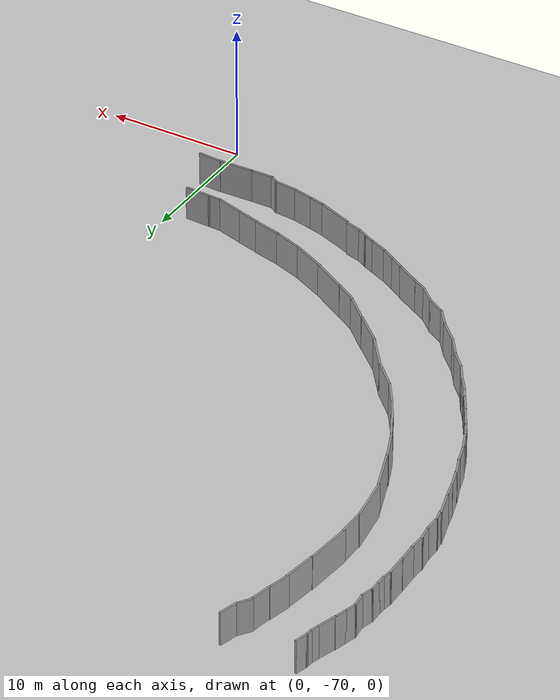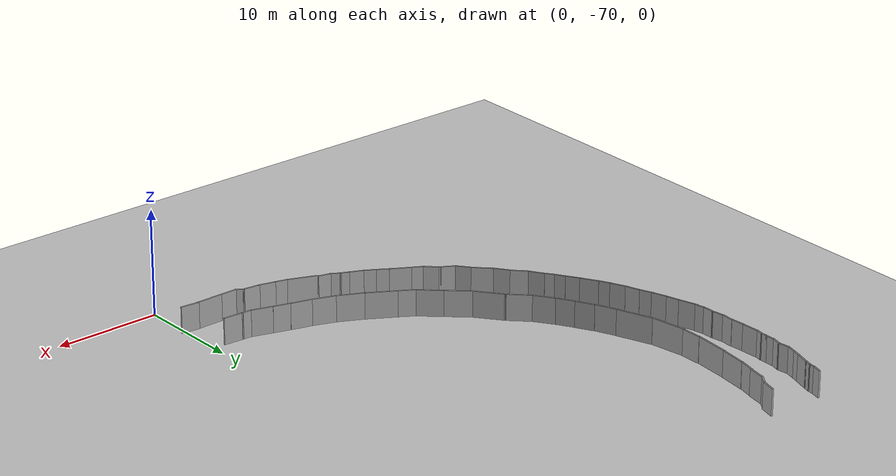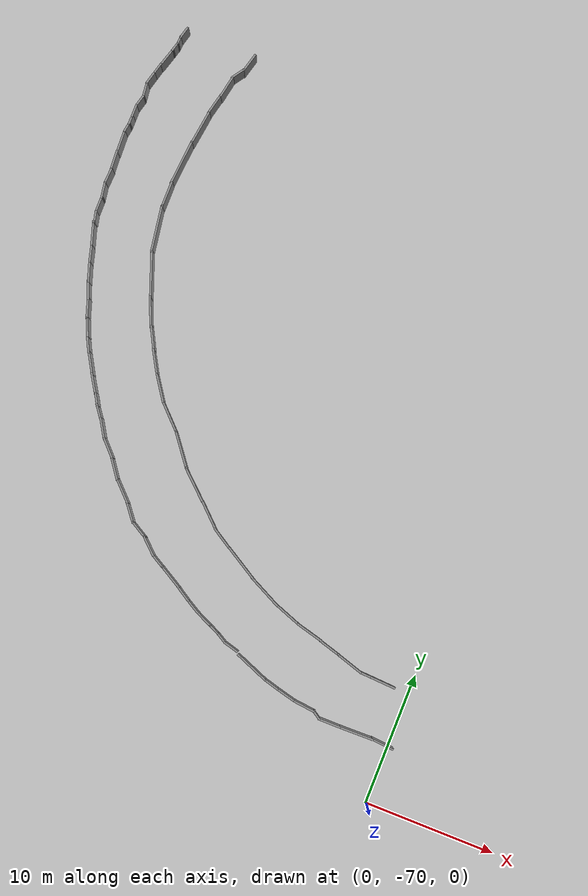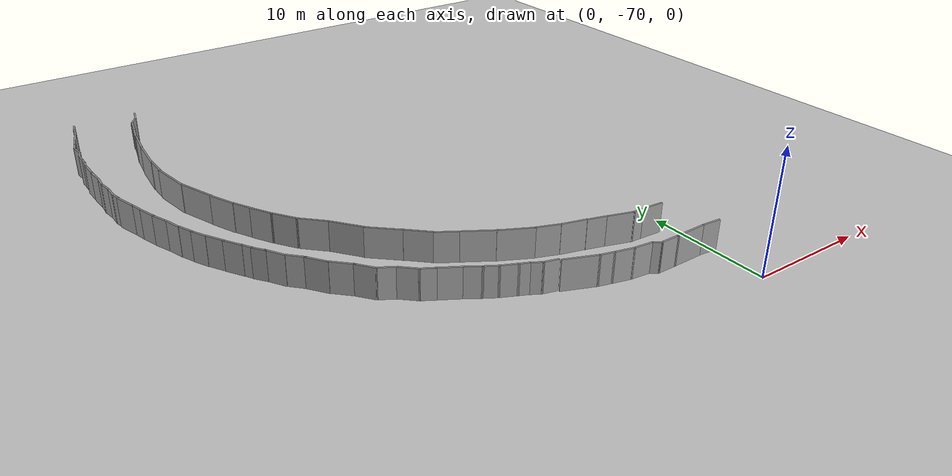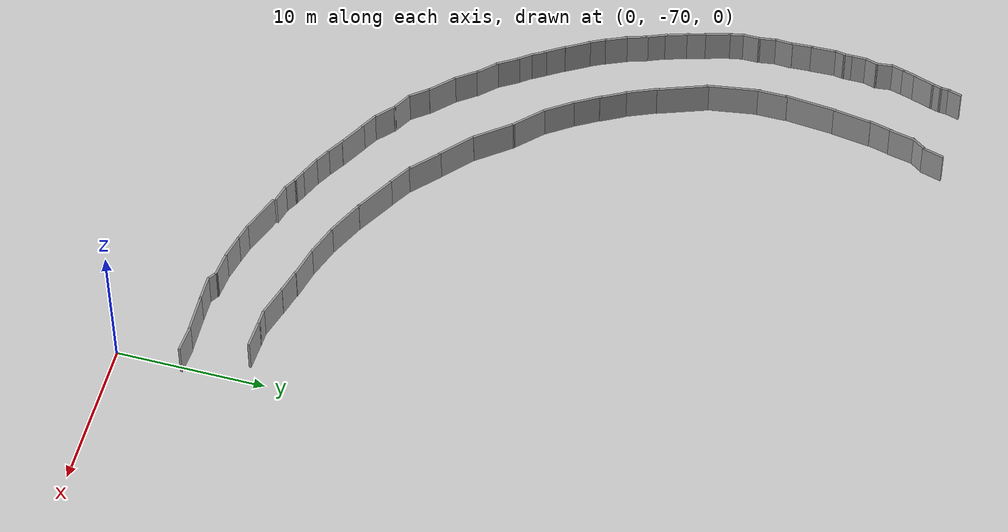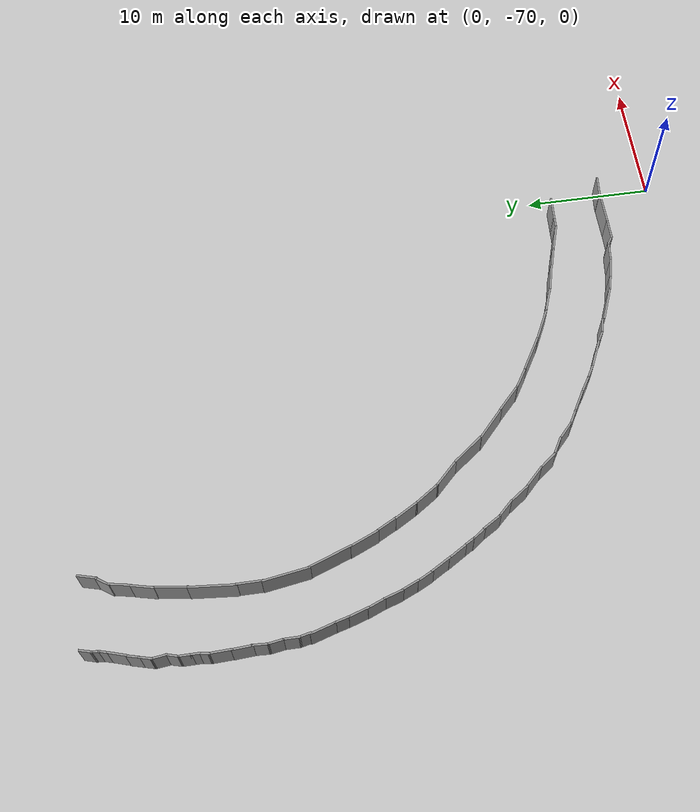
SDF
<sdf version="1.6">
 <world name="default">
  <model name="ground_plane">
   <static>1</static>
   <link name="link">
    <collision name="collision">
     <geometry><plane><normal>0 0 1</normal><size>100 100</size></plane></geometry>
     <surface><friction><ode><mu>100</mu><mu2>50</mu2></ode></friction></surface>
    </collision>
    <visual name="visual">
     <cast_shadows>0</cast_shadows>
     <geometry><plane><normal>0 0 1</normal><size>100 100</size></plane></geometry>
     <material>
      <script><uri>file://media/materials/scripts/gazebo.material</uri><name>Gazebo/Grey</name></script>
     </material>
    </visual>
   </link>
  </model>
  <model name="yuvarlak_sonnn">
   <pose>8.74042 -31.6469 0 0 -0 0</pose>
   <link name="Wall_318">
    <collision name="Wall_318_Collision">
     <geometry><box><size>1.96251 0.15 2.5</size></box></geometry>
     <pose>0 0 1.25 0 -0 0</pose>
    </collision>
    <visual name="Wall_318_Visual">
     <pose>0 0 1.25 0 -0 0</pose>
     <geometry><box><size>1.96251 0.15 2.5</size></box></geometry>
     <material>
      <script><uri>file://media/materials/scripts/gazebo.material</uri><name>Gazebo/Grey</name></script>
      <ambient>1 1 1 1</ambient>
     </material>
    </visual>
    <pose>-10.8735 -29.6626 0 0 -0 3.08581</pose>
   </link>
   <link name="Wall_319">
    <collision name="Wall_319_Collision">
     <geometry><box><size>0.999328 0.15 2.5</size></box></geometry>
     <pose>0 0 1.25 0 -0 0</pose>
    </collision>
    <visual name="Wall_319_Visual">
     <pose>0 0 1.25 0 -0 0</pose>
     <geometry><box><size>0.999328 0.15 2.5</size></box></geometry>
     <material>
      <script><uri>file://media/materials/scripts/gazebo.material</uri><name>Gazebo/Grey</name></script>
      <ambient>1 1 1 1</ambient>
     </material>
    </visual>
    <pose>-12.2026 -29.5921 0 0 -0 3.0945</pose>
   </link>
   <link name="Wall_320">
    <collision name="Wall_320_Collision">
     <geometry><box><size>2.27017 0.15 2.5</size></box></geometry>
     <pose>0 0 1.25 0 -0 0</pose>
    </collision>
    <visual name="Wall_320_Visual">
     <pose>0 0 1.25 0 -0 0</pose>
     <geometry><box><size>2.27017 0.15 2.5</size></box></geometry>
     <material>
      <script><uri>file://media/materials/scripts/gazebo.material</uri><name>Gazebo/Grey</name></script>
      <ambient>1 1 1 1</ambient>
     </material>
    </visual>
    <pose>-13.6704 -29.2599 0 0 -0 2.84265</pose>
   </link>
   <link name="Wall_321">
    <collision name="Wall_321_Collision">
     <geometry><box><size>1.76033 0.15 2.5</size></box></geometry>
     <pose>0 0 1.25 0 -0 0</pose>
    </collision>
    <visual name="Wall_321_Visual">
     <pose>0 0 1.25 0 -0 0</pose>
     <geometry><box><size>1.76033 0.15 2.5</size></box></geometry>
     <material>
      <script><uri>file://media/materials/scripts/gazebo.material</uri><name>Gazebo/Grey</name></script>
      <ambient>1 1 1 1</ambient>
     </material>
    </visual>
    <pose>-15.4273 -28.7271 0 0 -0 2.86408</pose>
   </link>
   <link name="Wall_322">
    <collision name="Wall_322_Collision">
     <geometry><box><size>2.20839 0.15 2.5</size></box></geometry>
     <pose>0 0 1.25 0 -0 0</pose>
    </collision>
    <visual name="Wall_322_Visual">
     <pose>0 0 1.25 0 -0 0</pose>
     <geometry><box><size>2.20839 0.15 2.5</size></box></geometry>
     <material>
      <script><uri>file://media/materials/scripts/gazebo.material</uri><name>Gazebo/Grey</name></script>
      <ambient>1 1 1 1</ambient>
     </material>
    </visual>
    <pose>-17.1985 -28.2201 0 0 -0 2.89043</pose>
   </link>
   <link name="Wall_323">
    <collision name="Wall_323_Collision">
     <geometry><box><size>2.18118 0.15 2.5</size></box></geometry>
     <pose>0 0 1.25 0 -0 0</pose>
    </collision>
    <visual name="Wall_323_Visual">
     <pose>0 0 1.25 0 -0 0</pose>
     <geometry><box><size>2.18118 0.15 2.5</size></box></geometry>
     <material>
      <script><uri>file://media/materials/scripts/gazebo.material</uri><name>Gazebo/Grey</name></script>
      <ambient>1 1 1 1</ambient>
     </material>
    </visual>
    <pose>-19.1195 -27.6179 0 0 -0 2.79345</pose>
   </link>
   <link name="Wall_324">
    <collision name="Wall_324_Collision">
     <geometry><box><size>2.83524 0.15 2.5</size></box></geometry>
     <pose>0 0 1.25 0 -0 0</pose>
    </collision>
    <visual name="Wall_324_Visual">
     <pose>0 0 1.25 0 -0 0</pose>
     <geometry><box><size>2.83524 0.15 2.5</size></box></geometry>
     <material>
      <script><uri>file://media/materials/scripts/gazebo.material</uri><name>Gazebo/Grey</name></script>
      <ambient>1 1 1 1</ambient>
     </material>
    </visual>
    <pose>-21.3083 -26.6763 0 0 -0 2.6824</pose>
   </link>
   <link name="Wall_328">
    <collision name="Wall_328_Collision">
     <geometry><box><size>2.43569 0.15 2.5</size></box></geometry>
     <pose>0 0 1.25 0 -0 0</pose>
    </collision>
    <visual name="Wall_328_Visual">
     <pose>0 0 1.25 0 -0 0</pose>
     <geometry><box><size>2.43569 0.15 2.5</size></box></geometry>
     <material>
      <script><uri>file://media/materials/scripts/gazebo.material</uri><name>Gazebo/Grey</name></script>
      <ambient>1 1 1 1</ambient>
     </material>
    </visual>
    <pose>-27.1558 -22.9643 0 0 -0 2.38362</pose>
   </link>
   <link name="Wall_329">
    <collision name="Wall_329_Collision">
     <geometry><box><size>2.84211 0.15 2.5</size></box></geometry>
     <pose>0 0 1.25 0 -0 0</pose>
    </collision>
    <visual name="Wall_329_Visual">
     <pose>0 0 1.25 0 -0 0</pose>
     <geometry><box><size>2.84211 0.15 2.5</size></box></geometry>
     <material>
      <script><uri>file://media/materials/scripts/gazebo.material</uri><name>Gazebo/Grey</name></script>
      <ambient>1 1 1 1</ambient>
     </material>
    </visual>
    <pose>-29.0097 -21.2702 0 0 -0 2.40083</pose>
   </link>
   <link name="Wall_330">
    <collision name="Wall_330_Collision">
     <geometry><box><size>2.95314 0.15 2.5</size></box></geometry>
     <pose>0 0 1.25 0 -0 0</pose>
    </collision>
    <visual name="Wall_330_Visual">
     <pose>0 0 1.25 0 -0 0</pose>
     <geometry><box><size>2.95314 0.15 2.5</size></box></geometry>
     <material>
      <script><uri>file://media/materials/scripts/gazebo.material</uri><name>Gazebo/Grey</name></script>
      <ambient>1 1 1 1</ambient>
     </material>
    </visual>
    <pose>-30.8257 -19.2499 0 0 -0 2.22533</pose>
   </link>
   <link name="Wall_331">
    <collision name="Wall_331_Collision">
     <geometry><box><size>2.5 0.15 2.5</size></box></geometry>
     <pose>0 0 1.25 0 -0 0</pose>
    </collision>
    <visual name="Wall_331_Visual">
     <pose>0 0 1.25 0 -0 0</pose>
     <geometry><box><size>2.5 0.15 2.5</size></box></geometry>
     <material>
      <script><uri>file://media/materials/scripts/gazebo.material</uri><name>Gazebo/Grey</name></script>
      <ambient>1 1 1 1</ambient>
     </material>
    </visual>
    <pose>-32.5098 -17.3072 0 0 -0 2.35619</pose>
   </link>
   <link name="Wall_342">
    <collision name="Wall_342_Collision">
     <geometry><box><size>2 0.15 2.5</size></box></geometry>
     <pose>0 0 1.25 0 -0 0</pose>
    </collision>
    <visual name="Wall_342_Visual">
     <pose>0 0 1.25 0 -0 0</pose>
     <geometry><box><size>2 0.15 2.5</size></box></geometry>
     <material>
      <script><uri>file://media/materials/scripts/gazebo.material</uri><name>Gazebo/Grey</name></script>
      <ambient>1 1 1 1</ambient>
     </material>
    </visual>
    <pose>-34.9766 -13.9479 0 0 -0 2.0944</pose>
   </link>
   <link name="Wall_343">
    <collision name="Wall_343_Collision">
     <geometry><box><size>1.83031 0.15 2.5</size></box></geometry>
     <pose>0 0 1.25 0 -0 0</pose>
    </collision>
    <visual name="Wall_343_Visual">
     <pose>0 0 1.25 0 -0 0</pose>
     <geometry><box><size>1.83031 0.15 2.5</size></box></geometry>
     <material>
      <script><uri>file://media/materials/scripts/gazebo.material</uri><name>Gazebo/Grey</name></script>
      <ambient>1 1 1 1</ambient>
     </material>
    </visual>
    <pose>-35.8007 -12.4039 0 0 -0 2.05646</pose>
   </link>
   <link name="Wall_344">
    <collision name="Wall_344_Collision">
     <geometry><box><size>2.35974 0.15 2.5</size></box></geometry>
     <pose>0 0 1.25 0 -0 0</pose>
    </collision>
    <visual name="Wall_344_Visual">
     <pose>0 0 1.25 0 -0 0</pose>
     <geometry><box><size>2.35974 0.15 2.5</size></box></geometry>
     <material>
      <script><uri>file://media/materials/scripts/gazebo.material</uri><name>Gazebo/Grey</name></script>
      <ambient>1 1 1 1</ambient>
     </material>
    </visual>
    <pose>-36.6567 -10.6445 0 0 -0 1.97372</pose>
   </link>
   <link name="Wall_345">
    <collision name="Wall_345_Collision">
     <geometry><box><size>3.47447 0.15 2.5</size></box></geometry>
     <pose>0 0 1.25 0 -0 0</pose>
    </collision>
    <visual name="Wall_345_Visual">
     <pose>0 0 1.25 0 -0 0</pose>
     <geometry><box><size>3.47447 0.15 2.5</size></box></geometry>
     <material>
      <script><uri>file://media/materials/scripts/gazebo.material</uri><name>Gazebo/Grey</name></script>
      <ambient>1 1 1 1</ambient>
     </material>
    </visual>
    <pose>-37.6289 -8.06645 0 0 -0 1.92052</pose>
   </link>
   <link name="Wall_346">
    <collision name="Wall_346_Collision">
     <geometry><box><size>3.59993 0.15 2.5</size></box></geometry>
     <pose>0 0 1.25 0 -0 0</pose>
    </collision>
    <visual name="Wall_346_Visual">
     <pose>0 0 1.25 0 -0 0</pose>
     <geometry><box><size>3.59993 0.15 2.5</size></box></geometry>
     <material>
      <script><uri>file://media/materials/scripts/gazebo.material</uri><name>Gazebo/Grey</name></script>
      <ambient>1 1 1 1</ambient>
     </material>
    </visual>
    <pose>-38.4907 -4.79984 0 0 -0 1.72313</pose>
   </link>
   <link name="Wall_347">
    <collision name="Wall_347_Collision">
     <geometry><box><size>2 0.15 2.5</size></box></geometry>
     <pose>0 0 1.25 0 -0 0</pose>
    </collision>
    <visual name="Wall_347_Visual">
     <pose>0 0 1.25 0 -0 0</pose>
     <geometry><box><size>2 0.15 2.5</size></box></geometry>
     <material>
      <script><uri>file://media/materials/scripts/gazebo.material</uri><name>Gazebo/Grey</name></script>
      <ambient>1 1 1 1</ambient>
     </material>
    </visual>
    <pose>-38.7219 -2.16985 0 0 -0 1.5708</pose>
   </link>
   <link name="Wall_348">
    <collision name="Wall_348_Collision">
     <geometry><box><size>3.54552 0.15 2.5</size></box></geometry>
     <pose>0 0 1.25 0 -0 0</pose>
    </collision>
    <visual name="Wall_348_Visual">
     <pose>0 0 1.25 0 -0 0</pose>
     <geometry><box><size>3.54552 0.15 2.5</size></box></geometry>
     <material>
      <script><uri>file://media/materials/scripts/gazebo.material</uri><name>Gazebo/Grey</name></script>
      <ambient>1 1 1 1</ambient>
     </material>
    </visual>
    <pose>-38.6044 0.446442 0 0 -0 1.48347</pose>
   </link>
   <link name="Wall_349">
    <collision name="Wall_349_Collision">
     <geometry><box><size>2.61247 0.15 2.5</size></box></geometry>
     <pose>0 0 1.25 0 -0 0</pose>
    </collision>
    <visual name="Wall_349_Visual">
     <pose>0 0 1.25 0 -0 0</pose>
     <geometry><box><size>2.61247 0.15 2.5</size></box></geometry>
     <material>
      <script><uri>file://media/materials/scripts/gazebo.material</uri><name>Gazebo/Grey</name></script>
      <ambient>1 1 1 1</ambient>
     </material>
    </visual>
    <pose>-38.2575 3.35742 0 0 -0 1.43372</pose>
   </link>
   <link name="Wall_350">
    <collision name="Wall_350_Collision">
     <geometry><box><size>1.70824 0.15 2.5</size></box></geometry>
     <pose>0 0 1.25 0 -0 0</pose>
    </collision>
    <visual name="Wall_350_Visual">
     <pose>0 0 1.25 0 -0 0</pose>
     <geometry><box><size>1.70824 0.15 2.5</size></box></geometry>
     <material>
      <script><uri>file://media/materials/scripts/gazebo.material</uri><name>Gazebo/Grey</name></script>
      <ambient>1 1 1 1</ambient>
     </material>
    </visual>
    <pose>-37.9399 5.33515 0 0 -0 1.33767</pose>
   </link>
   <link name="Wall_364">
    <collision name="Wall_364_Collision">
     <geometry><box><size>1.5 0.15 2.5</size></box></geometry>
     <pose>0 0 1.25 0 -0 0</pose>
    </collision>
    <visual name="Wall_364_Visual">
     <pose>0 0 1.25 0 -0 0</pose>
     <geometry><box><size>1.5 0.15 2.5</size></box></geometry>
     <material>
      <script><uri>file://media/materials/scripts/gazebo.material</uri><name>Gazebo/Grey</name></script>
      <ambient>1 1 1 1</ambient>
     </material>
    </visual>
    <pose>-36.6661 9.17265 0 0 0 -1.8326</pose>
   </link>
   <link name="Wall_365">
    <collision name="Wall_365_Collision">
     <geometry><box><size>1.18407 0.15 2.5</size></box></geometry>
     <pose>0 0 1.25 0 -0 0</pose>
    </collision>
    <visual name="Wall_365_Visual">
     <pose>0 0 1.25 0 -0 0</pose>
     <geometry><box><size>1.18407 0.15 2.5</size></box></geometry>
     <material>
      <script><uri>file://media/materials/scripts/gazebo.material</uri><name>Gazebo/Grey</name></script>
      <ambient>1 1 1 1</ambient>
     </material>
    </visual>
    <pose>-37.162 8.09301 0 0 0 -2.16767</pose>
   </link>
   <link name="Wall_366">
    <collision name="Wall_366_Collision">
     <geometry><box><size>1.75193 0.15 2.5</size></box></geometry>
     <pose>0 0 1.25 0 -0 0</pose>
    </collision>
    <visual name="Wall_366_Visual">
     <pose>0 0 1.25 0 -0 0</pose>
     <geometry><box><size>1.75193 0.15 2.5</size></box></geometry>
     <material>
      <script><uri>file://media/materials/scripts/gazebo.material</uri><name>Gazebo/Grey</name></script>
      <ambient>1 1 1 1</ambient>
     </material>
    </visual>
    <pose>-37.5756 6.87928 0 0 0 -1.76381</pose>
   </link>
   <link name="Wall_368">
    <collision name="Wall_368_Collision">
     <geometry><box><size>1.87517 0.15 2.5</size></box></geometry>
     <pose>0 0 1.25 0 -0 0</pose>
    </collision>
    <visual name="Wall_368_Visual">
     <pose>0 0 1.25 0 -0 0</pose>
     <geometry><box><size>1.87517 0.15 2.5</size></box></geometry>
     <material>
      <script><uri>file://media/materials/scripts/gazebo.material</uri><name>Gazebo/Grey</name></script>
      <ambient>1 1 1 1</ambient>
     </material>
    </visual>
    <pose>-25.6241 -24.2058 0 0 0 -0.556826</pose>
   </link>
   <link name="Wall_369">
    <collision name="Wall_369_Collision">
     <geometry><box><size>2.92122 0.15 2.5</size></box></geometry>
     <pose>0 0 1.25 0 -0 0</pose>
    </collision>
    <visual name="Wall_369_Visual">
     <pose>0 0 1.25 0 -0 0</pose>
     <geometry><box><size>2.92122 0.15 2.5</size></box></geometry>
     <material>
      <script><uri>file://media/materials/scripts/gazebo.material</uri><name>Gazebo/Grey</name></script>
      <ambient>1 1 1 1</ambient>
     </material>
    </visual>
    <pose>-23.6712 -25.3714 0 0 0 -0.537813</pose>
   </link>
   <link name="Wall_379">
    <collision name="Wall_379_Collision">
     <geometry><box><size>2.23821 0.15 2.5</size></box></geometry>
     <pose>0 0 1.25 0 -0 0</pose>
    </collision>
    <visual name="Wall_379_Visual">
     <pose>0 0 1.25 0 -0 0</pose>
     <geometry><box><size>2.23821 0.15 2.5</size></box></geometry>
     <material>
      <script><uri>file://media/materials/scripts/gazebo.material</uri><name>Gazebo/Grey</name></script>
      <ambient>1 1 1 1</ambient>
     </material>
    </visual>
    <pose>-33.9274 -15.6127 0 0 0 -0.974051</pose>
   </link>
   <link name="Wall_39">
    <collision name="Wall_39_Collision">
     <geometry><box><size>1 0.15 2.5</size></box></geometry>
     <pose>0 0 1.25 0 -0 0</pose>
    </collision>
    <visual name="Wall_39_Visual">
     <pose>0 0 1.25 0 -0 0</pose>
     <geometry><box><size>1 0.15 2.5</size></box></geometry>
     <material>
      <script><uri>file://media/materials/scripts/gazebo.material</uri><name>Gazebo/Grey</name></script>
      <ambient>1 1 1 1</ambient>
     </material>
    </visual>
    <pose>-41.9886 9.47233 0 0 0 -1.8326</pose>
   </link>
   <link name="Wall_40">
    <collision name="Wall_40_Collision">
     <geometry><box><size>0.686699 0.15 2.5</size></box></geometry>
     <pose>0 0 1.25 0 -0 0</pose>
    </collision>
    <visual name="Wall_40_Visual">
     <pose>0 0 1.25 0 -0 0</pose>
     <geometry><box><size>0.686699 0.15 2.5</size></box></geometry>
     <material>
      <script><uri>file://media/materials/scripts/gazebo.material</uri><name>Gazebo/Grey</name></script>
      <ambient>1 1 1 1</ambient>
     </material>
    </visual>
    <pose>-42.12 8.81444 0 0 0 -1.65071</pose>
   </link>
   <link name="Wall_41">
    <collision name="Wall_41_Collision">
     <geometry><box><size>0.75 0.15 2.5</size></box></geometry>
     <pose>0 0 1.25 0 -0 0</pose>
    </collision>
    <visual name="Wall_41_Visual">
     <pose>0 0 1.25 0 -0 0</pose>
     <geometry><box><size>0.75 0.15 2.5</size></box></geometry>
     <material>
      <script><uri>file://media/materials/scripts/gazebo.material</uri><name>Gazebo/Grey</name></script>
      <ambient>1 1 1 1</ambient>
     </material>
    </visual>
    <pose>-42.2191 8.25717 0 0 0 -1.8326</pose>
   </link>
   <link name="Wall_42">
    <collision name="Wall_42_Collision">
     <geometry><box><size>1.51857 0.15 2.5</size></box></geometry>
     <pose>0 0 1.25 0 -0 0</pose>
    </collision>
    <visual name="Wall_42_Visual">
     <pose>0 0 1.25 0 -0 0</pose>
     <geometry><box><size>1.51857 0.15 2.5</size></box></geometry>
     <material>
      <script><uri>file://media/materials/scripts/gazebo.material</uri><name>Gazebo/Grey</name></script>
      <ambient>1 1 1 1</ambient>
     </material>
    </visual>
    <pose>-42.4975 7.31322 0 0 0 -1.86856</pose>
   </link>
   <link name="Wall_43">
    <collision name="Wall_43_Collision">
     <geometry><box><size>1 0.15 2.5</size></box></geometry>
     <pose>0 0 1.25 0 -0 0</pose>
    </collision>
    <visual name="Wall_43_Visual">
     <pose>0 0 1.25 0 -0 0</pose>
     <geometry><box><size>1 0.15 2.5</size></box></geometry>
     <material>
      <script><uri>file://media/materials/scripts/gazebo.material</uri><name>Gazebo/Grey</name></script>
      <ambient>1 1 1 1</ambient>
     </material>
    </visual>
    <pose>-42.8284 6.24853 0 0 0 -1.8326</pose>
   </link>
   <link name="Wall_44">
    <collision name="Wall_44_Collision">
     <geometry><box><size>1 0.15 2.5</size></box></geometry>
     <pose>0 0 1.25 0 -0 0</pose>
    </collision>
    <visual name="Wall_44_Visual">
     <pose>0 0 1.25 0 -0 0</pose>
     <geometry><box><size>1 0.15 2.5</size></box></geometry>
     <material>
      <script><uri>file://media/materials/scripts/gazebo.material</uri><name>Gazebo/Grey</name></script>
      <ambient>1 1 1 1</ambient>
     </material>
    </visual>
    <pose>-43.0484 5.42749 0 0 0 -1.8326</pose>
   </link>
   <link name="Wall_45">
    <collision name="Wall_45_Collision">
     <geometry><box><size>1.20408 0.15 2.5</size></box></geometry>
     <pose>0 0 1.25 0 -0 0</pose>
    </collision>
    <visual name="Wall_45_Visual">
     <pose>0 0 1.25 0 -0 0</pose>
     <geometry><box><size>1.20408 0.15 2.5</size></box></geometry>
     <material>
      <script><uri>file://media/materials/scripts/gazebo.material</uri><name>Gazebo/Grey</name></script>
      <ambient>1 1 1 1</ambient>
     </material>
    </visual>
    <pose>-43.099 4.49329 0 0 0 -1.45796</pose>
   </link>
   <link name="Wall_46">
    <collision name="Wall_46_Collision">
     <geometry><box><size>1 0.15 2.5</size></box></geometry>
     <pose>0 0 1.25 0 -0 0</pose>
    </collision>
    <visual name="Wall_46_Visual">
     <pose>0 0 1.25 0 -0 0</pose>
     <geometry><box><size>1 0.15 2.5</size></box></geometry>
     <material>
      <script><uri>file://media/materials/scripts/gazebo.material</uri><name>Gazebo/Grey</name></script>
      <ambient>1 1 1 1</ambient>
     </material>
    </visual>
    <pose>-43.1497 3.55908 0 0 0 -1.8326</pose>
   </link>
   <link name="Wall_47">
    <collision name="Wall_47_Collision">
     <geometry><box><size>1 0.15 2.5</size></box></geometry>
     <pose>0 0 1.25 0 -0 0</pose>
    </collision>
    <visual name="Wall_47_Visual">
     <pose>0 0 1.25 0 -0 0</pose>
     <geometry><box><size>1 0.15 2.5</size></box></geometry>
     <material>
      <script><uri>file://media/materials/scripts/gazebo.material</uri><name>Gazebo/Grey</name></script>
      <ambient>1 1 1 1</ambient>
     </material>
    </visual>
    <pose>-43.2597 2.72356 0 0 0 -1.5708</pose>
   </link>
   <link name="Wall_48">
    <collision name="Wall_48_Collision">
     <geometry><box><size>0.75 0.15 2.5</size></box></geometry>
     <pose>0 0 1.25 0 -0 0</pose>
    </collision>
    <visual name="Wall_48_Visual">
     <pose>0 0 1.25 0 -0 0</pose>
     <geometry><box><size>0.75 0.15 2.5</size></box></geometry>
     <material>
      <script><uri>file://media/materials/scripts/gazebo.material</uri><name>Gazebo/Grey</name></script>
      <ambient>1 1 1 1</ambient>
     </material>
    </visual>
    <pose>-43.2597 1.99856 0 0 0 -1.5708</pose>
   </link>
   <link name="Wall_49">
    <collision name="Wall_49_Collision">
     <geometry><box><size>0.784371 0.15 2.5</size></box></geometry>
     <pose>0 0 1.25 0 -0 0</pose>
    </collision>
    <visual name="Wall_49_Visual">
     <pose>0 0 1.25 0 -0 0</pose>
     <geometry><box><size>0.784371 0.15 2.5</size></box></geometry>
     <material>
      <script><uri>file://media/materials/scripts/gazebo.material</uri><name>Gazebo/Grey</name></script>
      <ambient>1 1 1 1</ambient>
     </material>
    </visual>
    <pose>-43.3124 1.38579 0 0 0 -1.73779</pose>
   </link>
   <link name="Wall_50">
    <collision name="Wall_50_Collision">
     <geometry><box><size>1.75114 0.15 2.5</size></box></geometry>
     <pose>0 0 1.25 0 -0 0</pose>
    </collision>
    <visual name="Wall_50_Visual">
     <pose>0 0 1.25 0 -0 0</pose>
     <geometry><box><size>1.75114 0.15 2.5</size></box></geometry>
     <material>
      <script><uri>file://media/materials/scripts/gazebo.material</uri><name>Gazebo/Grey</name></script>
      <ambient>1 1 1 1</ambient>
     </material>
    </visual>
    <pose>-43.3349 0.273016 0 0 0 -1.5331</pose>
   </link>
   <link name="Wall_51">
    <collision name="Wall_51_Collision">
     <geometry><box><size>1.56299 0.15 2.5</size></box></geometry>
     <pose>0 0 1.25 0 -0 0</pose>
    </collision>
    <visual name="Wall_51_Visual">
     <pose>0 0 1.25 0 -0 0</pose>
     <geometry><box><size>1.56299 0.15 2.5</size></box></geometry>
     <material>
      <script><uri>file://media/materials/scripts/gazebo.material</uri><name>Gazebo/Grey</name></script>
      <ambient>1 1 1 1</ambient>
     </material>
    </visual>
    <pose>-43.2834 -1.23226 0 0 0 -1.5121</pose>
   </link>
   <link name="Wall_52">
    <collision name="Wall_52_Collision">
     <geometry><box><size>1.25165 0.15 2.5</size></box></geometry>
     <pose>0 0 1.25 0 -0 0</pose>
    </collision>
    <visual name="Wall_52_Visual">
     <pose>0 0 1.25 0 -0 0</pose>
     <geometry><box><size>1.25165 0.15 2.5</size></box></geometry>
     <material>
      <script><uri>file://media/materials/scripts/gazebo.material</uri><name>Gazebo/Grey</name></script>
      <ambient>1 1 1 1</ambient>
     </material>
    </visual>
    <pose>-43.2521 -2.48754 0 0 0 -1.6256</pose>
   </link>
   <link name="Wall_53">
    <collision name="Wall_53_Collision">
     <geometry><box><size>1.25439 0.15 2.5</size></box></geometry>
     <pose>0 0 1.25 0 -0 0</pose>
    </collision>
    <visual name="Wall_53_Visual">
     <pose>0 0 1.25 0 -0 0</pose>
     <geometry><box><size>1.25439 0.15 2.5</size></box></geometry>
     <material>
      <script><uri>file://media/materials/scripts/gazebo.material</uri><name>Gazebo/Grey</name></script>
      <ambient>1 1 1 1</ambient>
     </material>
    </visual>
    <pose>-43.1976 -3.58321 0 0 0 -1.41689</pose>
   </link>
   <link name="Wall_54">
    <collision name="Wall_54_Collision">
     <geometry><box><size>1.25 0.15 2.5</size></box></geometry>
     <pose>0 0 1.25 0 -0 0</pose>
    </collision>
    <visual name="Wall_54_Visual">
     <pose>0 0 1.25 0 -0 0</pose>
     <geometry><box><size>1.25 0.15 2.5</size></box></geometry>
     <material>
      <script><uri>file://media/materials/scripts/gazebo.material</uri><name>Gazebo/Grey</name></script>
      <ambient>1 1 1 1</ambient>
     </material>
    </visual>
    <pose>-43.1129 -4.67888 0 0 0 -1.5708</pose>
   </link>
   <link name="Wall_55">
    <collision name="Wall_55_Collision">
     <geometry><box><size>0.967463 0.15 2.5</size></box></geometry>
     <pose>0 0 1.25 0 -0 0</pose>
    </collision>
    <visual name="Wall_55_Visual">
     <pose>0 0 1.25 0 -0 0</pose>
     <geometry><box><size>0.967463 0.15 2.5</size></box></geometry>
     <material>
      <script><uri>file://media/materials/scripts/gazebo.material</uri><name>Gazebo/Grey</name></script>
      <ambient>1 1 1 1</ambient>
     </material>
    </visual>
    <pose>-43.0235 -5.6277 0 0 0 -1.35018</pose>
   </link>
   <link name="Wall_56">
    <collision name="Wall_56_Collision">
     <geometry><box><size>1.99476 0.15 2.5</size></box></geometry>
     <pose>0 0 1.25 0 -0 0</pose>
    </collision>
    <visual name="Wall_56_Visual">
     <pose>0 0 1.25 0 -0 0</pose>
     <geometry><box><size>1.99476 0.15 2.5</size></box></geometry>
     <material>
      <script><uri>file://media/materials/scripts/gazebo.material</uri><name>Gazebo/Grey</name></script>
      <ambient>1 1 1 1</ambient>
     </material>
    </visual>
    <pose>-42.7278 -6.90918 0 0 0 -1.27624</pose>
   </link>
   <link name="Wall_57">
    <collision name="Wall_57_Collision">
     <geometry><box><size>1.25 0.15 2.5</size></box></geometry>
     <pose>0 0 1.25 0 -0 0</pose>
    </collision>
    <visual name="Wall_57_Visual">
     <pose>0 0 1.25 0 -0 0</pose>
     <geometry><box><size>1.25 0.15 2.5</size></box></geometry>
     <material>
      <script><uri>file://media/materials/scripts/gazebo.material</uri><name>Gazebo/Grey</name></script>
      <ambient>1 1 1 1</ambient>
     </material>
    </visual>
    <pose>-42.3177 -8.30298 0 0 0 -1.309</pose>
   </link>
   <link name="Wall_58">
    <collision name="Wall_58_Collision">
     <geometry><box><size>1.60574 0.15 2.5</size></box></geometry>
     <pose>0 0 1.25 0 -0 0</pose>
    </collision>
    <visual name="Wall_58_Visual">
     <pose>0 0 1.25 0 -0 0</pose>
     <geometry><box><size>1.60574 0.15 2.5</size></box></geometry>
     <material>
      <script><uri>file://media/materials/scripts/gazebo.material</uri><name>Gazebo/Grey</name></script>
      <ambient>1 1 1 1</ambient>
     </material>
    </visual>
    <pose>-41.9503 -9.54658 0 0 0 -1.25655</pose>
   </link>
   <link name="Wall_59">
    <collision name="Wall_59_Collision">
     <geometry><box><size>1.475 0.15 2.5</size></box></geometry>
     <pose>0 0 1.25 0 -0 0</pose>
    </collision>
    <visual name="Wall_59_Visual">
     <pose>0 0 1.25 0 -0 0</pose>
     <geometry><box><size>1.475 0.15 2.5</size></box></geometry>
     <material>
      <script><uri>file://media/materials/scripts/gazebo.material</uri><name>Gazebo/Grey</name></script>
      <ambient>1 1 1 1</ambient>
     </material>
    </visual>
    <pose>-41.4985 -10.8535 0 0 0 -1.18876</pose>
   </link>
   <link name="Wall_60">
    <collision name="Wall_60_Collision">
     <geometry><box><size>1.55985 0.15 2.5</size></box></geometry>
     <pose>0 0 1.25 0 -0 0</pose>
    </collision>
    <visual name="Wall_60_Visual">
     <pose>0 0 1.25 0 -0 0</pose>
     <geometry><box><size>1.55985 0.15 2.5</size></box></geometry>
     <material>
      <script><uri>file://media/materials/scripts/gazebo.material</uri><name>Gazebo/Grey</name></script>
      <ambient>1 1 1 1</ambient>
     </material>
    </visual>
    <pose>-41.0387 -12.1202 0 0 0 -1.26421</pose>
   </link>
   <link name="Wall_61">
    <collision name="Wall_61_Collision">
     <geometry><box><size>1.48357 0.15 2.5</size></box></geometry>
     <pose>0 0 1.25 0 -0 0</pose>
    </collision>
    <visual name="Wall_61_Visual">
     <pose>0 0 1.25 0 -0 0</pose>
     <geometry><box><size>1.48357 0.15 2.5</size></box></geometry>
     <material>
      <script><uri>file://media/materials/scripts/gazebo.material</uri><name>Gazebo/Grey</name></script>
      <ambient>1 1 1 1</ambient>
     </material>
    </visual>
    <pose>-40.5406 -13.404 0 0 0 -1.16173</pose>
   </link>
   <link name="Wall_62">
    <collision name="Wall_62_Collision">
     <geometry><box><size>1.34466 0.15 2.5</size></box></geometry>
     <pose>0 0 1.25 0 -0 0</pose>
    </collision>
    <visual name="Wall_62_Visual">
     <pose>0 0 1.25 0 -0 0</pose>
     <geometry><box><size>1.34466 0.15 2.5</size></box></geometry>
     <material>
      <script><uri>file://media/materials/scripts/gazebo.material</uri><name>Gazebo/Grey</name></script>
      <ambient>1 1 1 1</ambient>
     </material>
    </visual>
    <pose>-40.0284 -14.5501 0 0 0 -1.10721</pose>
   </link>
   <link name="Wall_63">
    <collision name="Wall_63_Collision">
     <geometry><box><size>1.75 0.15 2.5</size></box></geometry>
     <pose>0 0 1.25 0 -0 0</pose>
    </collision>
    <visual name="Wall_63_Visual">
     <pose>0 0 1.25 0 -0 0</pose>
     <geometry><box><size>1.75 0.15 2.5</size></box></geometry>
     <material>
      <script><uri>file://media/materials/scripts/gazebo.material</uri><name>Gazebo/Grey</name></script>
      <ambient>1 1 1 1</ambient>
     </material>
    </visual>
    <pose>-39.3412 -15.7772 0 0 0 -1.0472</pose>
   </link>
   <link name="Wall_64">
    <collision name="Wall_64_Collision">
     <geometry><box><size>1.61732 0.15 2.5</size></box></geometry>
     <pose>0 0 1.25 0 -0 0</pose>
    </collision>
    <visual name="Wall_64_Visual">
     <pose>0 0 1.25 0 -0 0</pose>
     <geometry><box><size>1.61732 0.15 2.5</size></box></geometry>
     <material>
      <script><uri>file://media/materials/scripts/gazebo.material</uri><name>Gazebo/Grey</name></script>
      <ambient>1 1 1 1</ambient>
     </material>
    </visual>
    <pose>-38.5768 -17.0949 0 0 0 -1.01916</pose>
   </link>
   <link name="Wall_65">
    <collision name="Wall_65_Collision">
     <geometry><box><size>1 0.15 2.5</size></box></geometry>
     <pose>0 0 1.25 0 -0 0</pose>
    </collision>
    <visual name="Wall_65_Visual">
     <pose>0 0 1.25 0 -0 0</pose>
     <geometry><box><size>1 0.15 2.5</size></box></geometry>
     <material>
      <script><uri>file://media/materials/scripts/gazebo.material</uri><name>Gazebo/Grey</name></script>
      <ambient>1 1 1 1</ambient>
     </material>
    </visual>
    <pose>-37.9597 -18.0878 0 0 0 -1.0472</pose>
   </link>
   <link name="Wall_66">
    <collision name="Wall_66_Collision">
     <geometry><box><size>1.19071 0.15 2.5</size></box></geometry>
     <pose>0 0 1.25 0 -0 0</pose>
    </collision>
    <visual name="Wall_66_Visual">
     <pose>0 0 1.25 0 -0 0</pose>
     <geometry><box><size>1.19071 0.15 2.5</size></box></geometry>
     <material>
      <script><uri>file://media/materials/scripts/gazebo.material</uri><name>Gazebo/Grey</name></script>
      <ambient>1 1 1 1</ambient>
     </material>
    </visual>
    <pose>-37.4589 -18.8749 0 0 0 -0.936297</pose>
   </link>
   <link name="Wall_67">
    <collision name="Wall_67_Collision">
     <geometry><box><size>1.6367 0.15 2.5</size></box></geometry>
     <pose>0 0 1.25 0 -0 0</pose>
    </collision>
    <visual name="Wall_67_Visual">
     <pose>0 0 1.25 0 -0 0</pose>
     <geometry><box><size>1.6367 0.15 2.5</size></box></geometry>
     <material>
      <script><uri>file://media/materials/scripts/gazebo.material</uri><name>Gazebo/Grey</name></script>
      <ambient>1 1 1 1</ambient>
     </material>
    </visual>
    <pose>-36.7457 -19.9301 0 0 0 -1.0269</pose>
   </link>
   <link name="Wall_68">
    <collision name="Wall_68_Collision">
     <geometry><box><size>1.62512 0.15 2.5</size></box></geometry>
     <pose>0 0 1.25 0 -0 0</pose>
    </collision>
    <visual name="Wall_68_Visual">
     <pose>0 0 1.25 0 -0 0</pose>
     <geometry><box><size>1.62512 0.15 2.5</size></box></geometry>
     <material>
      <script><uri>file://media/materials/scripts/gazebo.material</uri><name>Gazebo/Grey</name></script>
      <ambient>1 1 1 1</ambient>
     </material>
    </visual>
    <pose>-35.8324 -21.1004 0 0 0 -0.810153</pose>
   </link>
   <link name="Wall_69">
    <collision name="Wall_69_Collision">
     <geometry><box><size>1.80333 0.15 2.5</size></box></geometry>
     <pose>0 0 1.25 0 -0 0</pose>
    </collision>
    <visual name="Wall_69_Visual">
     <pose>0 0 1.25 0 -0 0</pose>
     <geometry><box><size>1.80333 0.15 2.5</size></box></geometry>
     <material>
      <script><uri>file://media/materials/scripts/gazebo.material</uri><name>Gazebo/Grey</name></script>
      <ambient>1 1 1 1</ambient>
     </material>
    </visual>
    <pose>-34.8636 -22.3074 0 0 0 -0.950597</pose>
   </link>
   <link name="Wall_70">
    <collision name="Wall_70_Collision">
     <geometry><box><size>2 0.15 2.5</size></box></geometry>
     <pose>0 0 1.25 0 -0 0</pose>
    </collision>
    <visual name="Wall_70_Visual">
     <pose>0 0 1.25 0 -0 0</pose>
     <geometry><box><size>2 0.15 2.5</size></box></geometry>
     <material>
      <script><uri>file://media/materials/scripts/gazebo.material</uri><name>Gazebo/Grey</name></script>
      <ambient>1 1 1 1</ambient>
     </material>
    </visual>
    <pose>-33.709 -23.6342 0 0 0 -0.785398</pose>
   </link>
   <link name="Wall_71">
    <collision name="Wall_71_Collision">
     <geometry><box><size>1.66775 0.15 2.5</size></box></geometry>
     <pose>0 0 1.25 0 -0 0</pose>
    </collision>
    <visual name="Wall_71_Visual">
     <pose>0 0 1.25 0 -0 0</pose>
     <geometry><box><size>1.66775 0.15 2.5</size></box></geometry>
     <material>
      <script><uri>file://media/materials/scripts/gazebo.material</uri><name>Gazebo/Grey</name></script>
      <ambient>1 1 1 1</ambient>
     </material>
    </visual>
    <pose>-32.6078 -24.8862 0 0 0 -0.907521</pose>
   </link>
   <link name="Wall_72">
    <collision name="Wall_72_Collision">
     <geometry><box><size>1.5 0.15 2.5</size></box></geometry>
     <pose>0 0 1.25 0 -0 0</pose>
    </collision>
    <visual name="Wall_72_Visual">
     <pose>0 0 1.25 0 -0 0</pose>
     <geometry><box><size>1.5 0.15 2.5</size></box></geometry>
     <material>
      <script><uri>file://media/materials/scripts/gazebo.material</uri><name>Gazebo/Grey</name></script>
      <ambient>1 1 1 1</ambient>
     </material>
    </visual>
    <pose>-31.5358 -25.8217 0 0 0 -0.523599</pose>
   </link>
   <link name="Wall_73">
    <collision name="Wall_73_Collision">
     <geometry><box><size>1.65305 0.15 2.5</size></box></geometry>
     <pose>0 0 1.25 0 -0 0</pose>
    </collision>
    <visual name="Wall_73_Visual">
     <pose>0 0 1.25 0 -0 0</pose>
     <geometry><box><size>1.65305 0.15 2.5</size></box></geometry>
     <material>
      <script><uri>file://media/materials/scripts/gazebo.material</uri><name>Gazebo/Grey</name></script>
      <ambient>1 1 1 1</ambient>
     </material>
    </visual>
    <pose>-30.4206 -26.67 0 0 0 -0.747689</pose>
   </link>
   <link name="Wall_74">
    <collision name="Wall_74_Collision">
     <geometry><box><size>1.25 0.15 2.5</size></box></geometry>
     <pose>0 0 1.25 0 -0 0</pose>
    </collision>
    <visual name="Wall_74_Visual">
     <pose>0 0 1.25 0 -0 0</pose>
     <geometry><box><size>1.25 0.15 2.5</size></box></geometry>
     <material>
      <script><uri>file://media/materials/scripts/gazebo.material</uri><name>Gazebo/Grey</name></script>
      <ambient>1 1 1 1</ambient>
     </material>
    </visual>
    <pose>-29.3935 -27.4557 0 0 0 -0.523599</pose>
   </link>
   <link name="Wall_75">
    <collision name="Wall_75_Collision">
     <geometry><box><size>2 0.15 2.5</size></box></geometry>
     <pose>0 0 1.25 0 -0 0</pose>
    </collision>
    <visual name="Wall_75_Visual">
     <pose>0 0 1.25 0 -0 0</pose>
     <geometry><box><size>2 0.15 2.5</size></box></geometry>
     <material>
      <script><uri>file://media/materials/scripts/gazebo.material</uri><name>Gazebo/Grey</name></script>
      <ambient>1 1 1 1</ambient>
     </material>
    </visual>
    <pose>-28.096 -28.1932 0 0 0 -0.523599</pose>
   </link>
   <link name="Wall_76">
    <collision name="Wall_76_Collision">
     <geometry><box><size>1.38215 0.15 2.5</size></box></geometry>
     <pose>0 0 1.25 0 -0 0</pose>
    </collision>
    <visual name="Wall_76_Visual">
     <pose>0 0 1.25 0 -0 0</pose>
     <geometry><box><size>1.38215 0.15 2.5</size></box></geometry>
     <material>
      <script><uri>file://media/materials/scripts/gazebo.material</uri><name>Gazebo/Grey</name></script>
      <ambient>1 1 1 1</ambient>
     </material>
    </visual>
    <pose>-26.7928 -28.9826 0 0 0 -0.559211</pose>
   </link>
   <link name="Wall_77">
    <collision name="Wall_77_Collision">
     <geometry><box><size>1.25 0.15 2.5</size></box></geometry>
     <pose>0 0 1.25 0 -0 0</pose>
    </collision>
    <visual name="Wall_77_Visual">
     <pose>0 0 1.25 0 -0 0</pose>
     <geometry><box><size>1.25 0.15 2.5</size></box></geometry>
     <material>
      <script><uri>file://media/materials/scripts/gazebo.material</uri><name>Gazebo/Grey</name></script>
      <ambient>1 1 1 1</ambient>
     </material>
    </visual>
    <pose>-25.7942 -29.5844 0 0 0 -0.523599</pose>
   </link>
   <link name="Wall_78">
    <collision name="Wall_78_Collision">
     <geometry><box><size>1.47243 0.15 2.5</size></box></geometry>
     <pose>0 0 1.25 0 -0 0</pose>
    </collision>
    <visual name="Wall_78_Visual">
     <pose>0 0 1.25 0 -0 0</pose>
     <geometry><box><size>1.47243 0.15 2.5</size></box></geometry>
     <material>
      <script><uri>file://media/materials/scripts/gazebo.material</uri><name>Gazebo/Grey</name></script>
      <ambient>1 1 1 1</ambient>
     </material>
    </visual>
    <pose>-24.7166 -30.1344 0 0 0 -0.428934</pose>
   </link>
   <link name="Wall_79">
    <collision name="Wall_79_Collision">
     <geometry><box><size>0.952576 0.15 2.5</size></box></geometry>
     <pose>0 0 1.25 0 -0 0</pose>
    </collision>
    <visual name="Wall_79_Visual">
     <pose>0 0 1.25 0 -0 0</pose>
     <geometry><box><size>0.952576 0.15 2.5</size></box></geometry>
     <material>
      <script><uri>file://media/materials/scripts/gazebo.material</uri><name>Gazebo/Grey</name></script>
      <ambient>1 1 1 1</ambient>
     </material>
    </visual>
    <pose>-23.7495 -30.5744 0 0 0 -0.423749</pose>
   </link>
   <link name="Wall_80">
    <collision name="Wall_80_Collision">
     <geometry><box><size>1 0.15 2.5</size></box></geometry>
     <pose>0 0 1.25 0 -0 0</pose>
    </collision>
    <visual name="Wall_80_Visual">
     <pose>0 0 1.25 0 -0 0</pose>
     <geometry><box><size>1 0.15 2.5</size></box></geometry>
     <material>
      <script><uri>file://media/materials/scripts/gazebo.material</uri><name>Gazebo/Grey</name></script>
      <ambient>1 1 1 1</ambient>
     </material>
    </visual>
    <pose>-23.0156 -30.9519 0 0 0 -0.523599</pose>
   </link>
   <link name="Wall_81">
    <collision name="Wall_81_Collision">
     <geometry><box><size>1.25 0.15 2.5</size></box></geometry>
     <pose>0 0 1.25 0 -0 0</pose>
    </collision>
    <visual name="Wall_81_Visual">
     <pose>0 0 1.25 0 -0 0</pose>
     <geometry><box><size>1.25 0.15 2.5</size></box></geometry>
     <material>
      <script><uri>file://media/materials/scripts/gazebo.material</uri><name>Gazebo/Grey</name></script>
      <ambient>1 1 1 1</ambient>
     </material>
    </visual>
    <pose>-22.1163 -31.3068 0 0 0 -0.261799</pose>
   </link>
   <link name="Wall_83">
    <collision name="Wall_83_Collision">
     <geometry><box><size>2.81013 0.15 2.5</size></box></geometry>
     <pose>0 0 1.25 0 -0 0</pose>
    </collision>
    <visual name="Wall_83_Visual">
     <pose>0 0 1.25 0 -0 0</pose>
     <geometry><box><size>2.81013 0.15 2.5</size></box></geometry>
     <material>
      <script><uri>file://media/materials/scripts/gazebo.material</uri><name>Gazebo/Grey</name></script>
      <ambient>1 1 1 1</ambient>
     </material>
    </visual>
    <pose>-20.167 -32.1223 0 0 0 -0.376379</pose>
   </link>
   <link name="Wall_84">
    <collision name="Wall_84_Collision">
     <geometry><box><size>1.25 0.15 2.5</size></box></geometry>
     <pose>0 0 1.25 0 -0 0</pose>
    </collision>
    <visual name="Wall_84_Visual">
     <pose>0 0 1.25 0 -0 0</pose>
     <geometry><box><size>1.25 0.15 2.5</size></box></geometry>
     <material>
      <script><uri>file://media/materials/scripts/gazebo.material</uri><name>Gazebo/Grey</name></script>
      <ambient>1 1 1 1</ambient>
     </material>
    </visual>
    <pose>-18.3987 -32.7535 0 0 0 -0.261799</pose>
   </link>
   <link name="Wall_85">
    <collision name="Wall_85_Collision">
     <geometry><box><size>1.68187 0.15 2.5</size></box></geometry>
     <pose>0 0 1.25 0 -0 0</pose>
    </collision>
    <visual name="Wall_85_Visual">
     <pose>0 0 1.25 0 -0 0</pose>
     <geometry><box><size>1.68187 0.15 2.5</size></box></geometry>
     <material>
      <script><uri>file://media/materials/scripts/gazebo.material</uri><name>Gazebo/Grey</name></script>
      <ambient>1 1 1 1</ambient>
     </material>
    </visual>
    <pose>-17.1234 -33.0775 0 0 0 -0.239441</pose>
   </link>
   <link name="Wall_86">
    <collision name="Wall_86_Collision">
     <geometry><box><size>1.73927 0.15 2.5</size></box></geometry>
     <pose>0 0 1.25 0 -0 0</pose>
    </collision>
    <visual name="Wall_86_Visual">
     <pose>0 0 1.25 0 -0 0</pose>
     <geometry><box><size>1.73927 0.15 2.5</size></box></geometry>
     <material>
      <script><uri>file://media/materials/scripts/gazebo.material</uri><name>Gazebo/Grey</name></script>
      <ambient>1 1 1 1</ambient>
     </material>
    </visual>
    <pose>-15.5694 -33.3468 0 0 0 -0.110594</pose>
   </link>
   <link name="Wall_87">
    <collision name="Wall_87_Collision">
     <geometry><box><size>0.824454 0.15 2.5</size></box></geometry>
     <pose>0 0 1.25 0 -0 0</pose>
    </collision>
    <visual name="Wall_87_Visual">
     <pose>0 0 1.25 0 -0 0</pose>
     <geometry><box><size>0.824454 0.15 2.5</size></box></geometry>
     <material>
      <script><uri>file://media/materials/scripts/gazebo.material</uri><name>Gazebo/Grey</name></script>
      <ambient>1 1 1 1</ambient>
     </material>
    </visual>
    <pose>-14.5168 -33.618 0 0 0 -0.575125</pose>
   </link>
   <link name="Wall_88">
    <collision name="Wall_88_Collision">
     <geometry><box><size>1.75 0.15 2.5</size></box></geometry>
     <pose>0 0 1.25 0 -0 0</pose>
    </collision>
    <visual name="Wall_88_Visual">
     <pose>0 0 1.25 0 -0 0</pose>
     <geometry><box><size>1.75 0.15 2.5</size></box></geometry>
     <material>
      <script><uri>file://media/materials/scripts/gazebo.material</uri><name>Gazebo/Grey</name></script>
      <ambient>1 1 1 1</ambient>
     </material>
    </visual>
    <pose>-13.4338 -33.8014 0 0 -0 0</pose>
   </link>
   <link name="Wall_89">
    <collision name="Wall_89_Collision">
     <geometry><box><size>2.70429 0.15 2.5</size></box></geometry>
     <pose>0 0 1.25 0 -0 0</pose>
    </collision>
    <visual name="Wall_89_Visual">
     <pose>0 0 1.25 0 -0 0</pose>
     <geometry><box><size>2.70429 0.15 2.5</size></box></geometry>
     <material>
      <script><uri>file://media/materials/scripts/gazebo.material</uri><name>Gazebo/Grey</name></script>
      <ambient>1 1 1 1</ambient>
     </material>
    </visual>
    <pose>-11.3769 -33.7813 0 0 -0 0.015749</pose>
   </link>
   <link name="Wall_90">
    <collision name="Wall_90_Collision">
     <geometry><box><size>1.77044 0.15 2.5</size></box></geometry>
     <pose>0 0 1.25 0 -0 0</pose>
    </collision>
    <visual name="Wall_90_Visual">
     <pose>0 0 1.25 0 -0 0</pose>
     <geometry><box><size>1.77044 0.15 2.5</size></box></geometry>
     <material>
      <script><uri>file://media/materials/scripts/gazebo.material</uri><name>Gazebo/Grey</name></script>
      <ambient>1 1 1 1</ambient>
     </material>
    </visual>
    <pose>-9.29278 -33.8115 0 0 0 -0.086996</pose>
   </link>
   <static>1</static>
  </model>
 </world>
</sdf>
